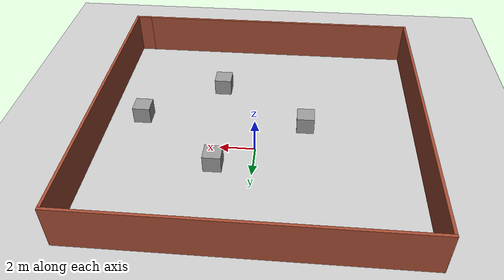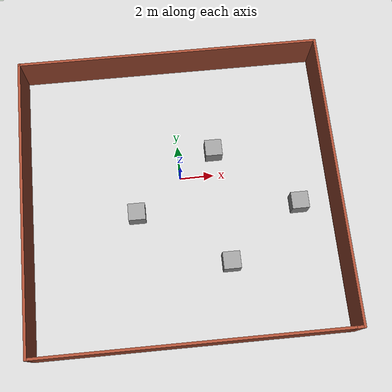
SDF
<sdf version="1.6">
 <world name="default">
  <light name="sun" type="directional">
   <pose>0 0 10 0 -0 0</pose>
   <diffuse>0.8 0.8 0.8 1</diffuse>
   <specular>0.2 0.2 0.2 1</specular>
   <attenuation>
    <range>1000</range>
    <constant>0.9</constant>
    <linear>0.01</linear>
    <quadratic>0.001</quadratic>
   </attenuation>
   <direction>-0.5 0.1 -0.9</direction>
   <spot><inner_angle>0</inner_angle><outer_angle>0</outer_angle><falloff>0</falloff></spot>
  </light>
  <model name="ground_plane">
   <static>1</static>
   <link name="link">
    <collision name="collision">
     <geometry><plane><normal>0 0 1</normal><size>100 100</size></plane></geometry>
     <surface><friction><ode><mu>5</mu><mu2>5</mu2></ode></friction></surface>
    </collision>
    <visual name="visual">
     <cast_shadows>0</cast_shadows>
     <geometry><plane><normal>0 0 1</normal><size>100 100</size></plane></geometry>
     <material>
      <script><uri>file://media/materials/scripts/gazebo.material</uri><name>Gazebo/Grey</name></script>
     </material>
    </visual>
   </link>
  </model>
  <gravity>0 0 -9.8</gravity>
  <magnetic_field>6e-06 2.3e-05 -4.2e-05</magnetic_field>
  <atmosphere type="adiabatic"/>
  <physics type="ode">
   <max_step_size>0.001</max_step_size>
   <real_time_factor>1</real_time_factor>
   <real_time_update_rate>1000</real_time_update_rate>
  </physics>
  <scene><ambient>0.4 0.4 0.4 1</ambient><background>0.7 0.7 0.7 1</background><shadows>1</shadows></scene>
  <audio><device>default</device></audio>
  <spherical_coordinates>
   <surface_model>EARTH_WGS84</surface_model>
   <latitude_deg>0</latitude_deg>
   <longitude_deg>0</longitude_deg>
   <elevation>0</elevation>
   <heading_deg>0</heading_deg>
  </spherical_coordinates>
  <model name="unit_box">
   <pose>-2.75621 -2.08569 0.5 0 -0 0</pose>
   <link name="link">
    <inertial>
     <mass>1</mass>
     <inertia>
      <ixx>0.166667</ixx>
      <ixy>0</ixy>
      <ixz>0</ixz>
      <iyy>0.166667</iyy>
      <iyz>0</iyz>
      <izz>0.166667</izz>
     </inertia>
    </inertial>
    <collision name="collision"><geometry><box><size>1 1 1</size></box></geometry></collision>
    <visual name="visual">
     <geometry><box><size>1 1 1</size></box></geometry>
     <material>
      <script><name>Gazebo/Grey</name><uri>file://media/materials/scripts/gazebo.material</uri></script>
     </material>
    </visual>
   </link>
  </model>
  <model name="unit_box_0">
   <pose>2.42568 -5.42922 0.5 0 -0 0</pose>
   <link name="link">
    <inertial>
     <mass>1</mass>
     <inertia>
      <ixx>0.166667</ixx>
      <ixy>0</ixy>
      <ixz>0</ixz>
      <iyy>0.166667</iyy>
      <iyz>0</iyz>
      <izz>0.166667</izz>
     </inertia>
    </inertial>
    <collision name="collision"><geometry><box><size>1 1 1</size></box></geometry></collision>
    <visual name="visual">
     <geometry><box><size>1 1 1</size></box></geometry>
     <material>
      <script><name>Gazebo/Grey</name><uri>file://media/materials/scripts/gazebo.material</uri></script>
     </material>
    </visual>
   </link>
  </model>
  <model name="unit_box_1">
   <pose>6.80004 -2.27503 0.5 0 -0 0</pose>
   <link name="link">
    <inertial>
     <mass>1</mass>
     <inertia>
      <ixx>0.166667</ixx>
      <ixy>0</ixy>
      <ixz>0</ixz>
      <iyy>0.166667</iyy>
      <iyz>0</iyz>
      <izz>0.166667</izz>
     </inertia>
    </inertial>
    <collision name="collision"><geometry><box><size>1 1 1</size></box></geometry></collision>
    <visual name="visual">
     <geometry><box><size>1 1 1</size></box></geometry>
     <material>
      <script><name>Gazebo/Grey</name><uri>file://media/materials/scripts/gazebo.material</uri></script>
     </material>
    </visual>
   </link>
  </model>
  <model name="unit_box_2">
   <pose>2.11984 1.4487 0.5 0 -0 0</pose>
   <link name="link">
    <inertial>
     <mass>1</mass>
     <inertia>
      <ixx>0.166667</ixx>
      <ixy>0</ixy>
      <ixz>0</ixz>
      <iyy>0.166667</iyy>
      <iyz>0</iyz>
      <izz>0.166667</izz>
     </inertia>
    </inertial>
    <collision name="collision"><geometry><box><size>1 1 1</size></box></geometry></collision>
    <visual name="visual">
     <geometry><box><size>1 1 1</size></box></geometry>
     <material>
      <script><name>Gazebo/Grey</name><uri>file://media/materials/scripts/gazebo.material</uri></script>
     </material>
    </visual>
   </link>
  </model>
  <model name="newworld_0">
   <pose>-0.097072 -1.33939 0 0 -0 0</pose>
   <link name="Wall_5">
    <collision name="Wall_5_Collision">
     <geometry><box><size>17.5 0.15 2.5</size></box></geometry>
     <pose>0 0 1.25 0 -0 0</pose>
    </collision>
    <visual name="Wall_5_Visual">
     <pose>0 0 1.25 0 -0 0</pose>
     <geometry><box><size>17.5 0.15 2.5</size></box></geometry>
     <material>
      <script><uri>file://media/materials/scripts/gazebo.material</uri><name>Gazebo/Bricks</name></script>
      <ambient>1 1 1 1</ambient>
     </material>
     <meta><layer>0</layer></meta>
    </visual>
    <pose>-0.25 -8.55 0 0 -0 3.14159</pose>
   </link>
   <link name="Wall_6">
    <collision name="Wall_6_Collision">
     <geometry><box><size>17.25 0.15 2.5</size></box></geometry>
     <pose>0 0 1.25 0 -0 0</pose>
    </collision>
    <visual name="Wall_6_Visual">
     <pose>0 0 1.25 0 -0 0</pose>
     <geometry><box><size>17.25 0.15 2.5</size></box></geometry>
     <material>
      <script><uri>file://media/materials/scripts/gazebo.material</uri><name>Gazebo/Bricks</name></script>
      <ambient>1 1 1 1</ambient>
     </material>
     <meta><layer>0</layer></meta>
    </visual>
    <pose>-8.925 -0 0 0 -0 1.5708</pose>
   </link>
   <link name="Wall_7">
    <collision name="Wall_7_Collision">
     <geometry><box><size>18 0.15 2.5</size></box></geometry>
     <pose>0 0 1.25 0 -0 0</pose>
    </collision>
    <visual name="Wall_7_Visual">
     <pose>0 0 1.25 0 -0 0</pose>
     <geometry><box><size>18 0.15 2.5</size></box></geometry>
     <material>
      <script><uri>file://media/materials/scripts/gazebo.material</uri><name>Gazebo/Bricks</name></script>
      <ambient>1 1 1 1</ambient>
     </material>
     <meta><layer>0</layer></meta>
    </visual>
    <pose>0 8.55 0 0 -0 0</pose>
   </link>
   <link name="Wall_8">
    <collision name="Wall_8_Collision">
     <geometry><box><size>17.25 0.15 2.5</size></box></geometry>
     <pose>0 0 1.25 0 -0 0</pose>
    </collision>
    <visual name="Wall_8_Visual">
     <pose>0 0 1.25 0 -0 0</pose>
     <geometry><box><size>17.25 0.15 2.5</size></box></geometry>
     <material>
      <script><uri>file://media/materials/scripts/gazebo.material</uri><name>Gazebo/Bricks</name></script>
      <ambient>1 1 1 1</ambient>
     </material>
     <meta><layer>0</layer></meta>
    </visual>
    <pose>8.925 -0 0 0 -0 -1.5708</pose>
   </link>
   <link name="Wall_9">
    <collision name="Wall_9_Collision">
     <geometry><box><size>1 0.15 2.5</size></box></geometry>
     <pose>0 0 1.25 0 -0 0</pose>
    </collision>
    <visual name="Wall_9_Visual">
     <pose>0 0 1.25 0 -0 0</pose>
     <geometry><box><size>1 0.15 2.5</size></box></geometry>
     <material>
      <script><uri>file://media/materials/scripts/gazebo.material</uri><name>Gazebo/Bricks</name></script>
      <ambient>1 1 1 1</ambient>
     </material>
     <meta><layer>0</layer></meta>
    </visual>
    <pose>8.5 -8.55 0 0 -0 3.14159</pose>
   </link>
   <static>1</static>
  </model>
 </world>
</sdf>
